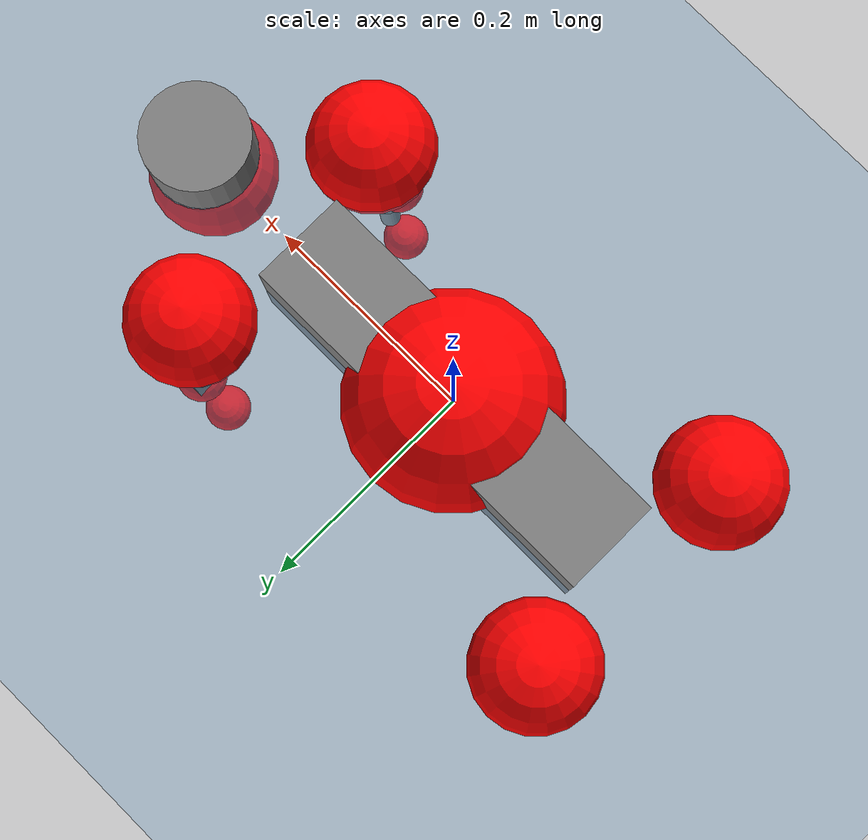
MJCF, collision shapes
<mujoco model="go2">
  <compiler angle="radian" assetdir="assets" balanceinertia="true" inertiafromgeom="false"/>

  <option timestep="0.005" density="1.2" viscosity="2e-05"/>

  <size nkey="1"/>

  <visual>
    <quality shadowsize="8192"/>
    <map shadowclip="0.5"/>
  </visual>

  <default>
    <default class="/">
      <geom contype="0" conaffinity="0" group="1" solref="-1000 -80"/>
      <site size="0.01 0.005 0.005" group="5"/>
      <general forcelimited="true" biastype="affine" gainprm="20" biasprm="0 -20 -0.5"/>
      <default class="go2">
        <joint armature="0.01" damping="0.01" frictionloss="0.2"/>
        <geom condim="1" margin="0.001"/>
        <default class="visual">
          <geom type="mesh" group="2"/>
        </default>
        <default class="collision">
          <geom group="3"/>
          <default class="foot">
            <geom size="0.022 0 0" condim="6" priority="1" friction="0.8 0.02 0.01" solimp="0.015 1 0.022"/>
          </default>
        </default>
        <default class="reward_collision_sphere">
          <geom group="5" rgba="1 0 0 1"/>
        </default>
      </default>
    </default>
  </default>

  <asset>
    <texture type="skybox" colorspace="auto" name="//unnamed_texture_0" builtin="gradient" rgb1="0.95 0.95 0.95" rgb2="0.95 0.95 0.95" width="100" height="600"/>
    <texture type="2d" colorspace="auto" name="texplane" builtin="checker" rgb1="0.345 0.575 0.748" rgb2="0.345 0.575 0.748" markrgb="1 1 1" width="512" height="512"/>
    <material name="MatPlane" class="/" texture="texplane" texuniform="true" texrepeat="2 2" specular="0.9"/>
    <material name="metal" class="/" rgba="0.9 0.95 0.95 1"/>
    <material name="black" class="/" rgba="0 0 0 1"/>
    <material name="white" class="/"/>
    <material name="gray" class="/" rgba="0.671705 0.692426 0.77427 1"/>
    <mesh name="base_0" class="/" file="base_0.obj"/>
    <mesh name="base_1" class="/" file="base_1.obj"/>
    <mesh name="base_2" class="/" file="base_2.obj"/>
    <mesh name="base_3" class="/" file="base_3.obj"/>
    <mesh name="base_4" class="/" file="base_4.obj"/>
    <mesh name="hip_0" class="/" file="hip_0.obj"/>
    <mesh name="hip_1" class="/" file="hip_1.obj"/>
    <mesh name="thigh_0" class="/" file="thigh_0.obj"/>
    <mesh name="thigh_1" class="/" file="thigh_1.obj"/>
    <mesh name="thigh_mirror_0" class="/" file="thigh_mirror_0.obj"/>
    <mesh name="thigh_mirror_1" class="/" file="thigh_mirror_1.obj"/>
    <mesh name="calf_0" class="/" file="calf_0.obj"/>
    <mesh name="calf_1" class="/" file="calf_1.obj"/>
    <mesh name="calf_mirror_0" class="/" file="calf_mirror_0.obj"/>
    <mesh name="calf_mirror_1" class="/" file="calf_mirror_1.obj"/>
    <mesh name="foot" class="/" file="foot.obj"/>
  </asset>

  <worldbody>
    <geom name="floor" class="/" size="100 100 0.125" type="plane" group="0" material="MatPlane"/>
    <light name="toplight_shadow" class="/" pos="0 0 5" dir="0.0990148 0.0990148 -0.990148" type="directional" ambient="0.04 0.04 0.04" diffuse="0.55 0.55 0.55" specular="0.12 0.12 0.12"/>
    <light name="toplight_fill" class="/" pos="0 0 5" dir="0.0990148 0.0990148 -0.990148" type="directional" castshadow="false" ambient="0.04 0.04 0.04" diffuse="0.3 0.3 0.3" specular="0.08 0.08 0.08"/>
    <body name="trunk" childclass="go2" pos="0.000535623 -0.00062427 0.000172419" quat="1 -3.43888e-05 0.00011033 9.80216e-05">
      <inertial pos="0.0221077 -0.000132338 -0.00484325" quat="-0.00258556 0.713811 0.00259073 0.700329" mass="5.84341" diaginertia="0.139598 0.0641106 0.0126185"/>
      <joint name="//unnamed_joint_0" type="free" armature="0" damping="0" frictionloss="0"/>
      <geom name="//unnamed_geom_1" class="visual" material="black" mesh="base_0"/>
      <geom name="//unnamed_geom_2" class="visual" material="black" mesh="base_1"/>
      <geom name="//unnamed_geom_3" class="visual" material="black" mesh="base_2"/>
      <geom name="//unnamed_geom_4" class="visual" material="white" mesh="base_3"/>
      <geom name="//unnamed_geom_5" class="visual" material="gray" mesh="base_4"/>
      <geom name="trunk_1" class="collision" size="0.178592 0.0443868 0.0541187" type="box"/>
      <geom name="trunk_2" class="collision" size="0.0474725 0.0427253" pos="0.300127 0 0.00875383" type="cylinder"/>
      <geom name="trunk_3" class="collision" size="0.0446242" pos="0.308552 0 -0.052523"/>
      <geom name="//unnamed_geom_9" class="reward_collision_sphere" size="0.094945"/>
      <geom name="//unnamed_geom_10" class="reward_collision_sphere" size="0.056967" pos="0.294862 0 -0.0393922"/>
      <site name="imu" pos="-0.0264163 -0.00209414 0.0312959" size="0.0094945"/>
      <camera name="track" pos="0 -1.83978 0" quat="0.707107 0.707107 0 0" mode="trackcom"/>
      <camera name="ego_camera" pos="0.32856 0 0.0393922" quat="-0.5 -0.5 0.5 0.5"/>
      <body name="FL_hip" pos="0.20329 0.0437906 0.00126966" quat="1 -3.23134e-05 -9.98615e-05 -8.64426e-05">
        <inertial pos="-0.00634352 0.00258915 -0.000173767" quat="0.496766 0.499167 0.505445 0.498579" mass="0.579262" diaginertia="0.00114241 0.000396527 0.000246635"/>
        <joint name="FL_hip_joint" pos="0 0 0" axis="0.999922 -0.0115413 0.00471141" range="-1.0454 1.04937" armature="0.00895506" damping="0.00727021" frictionloss="0.181116"/>
        <geom name="//unnamed_geom_11" class="visual" material="metal" mesh="hip_0"/>
        <geom name="//unnamed_geom_12" class="visual" material="gray" mesh="hip_1"/>
        <geom name="//unnamed_geom_13" class="collision" size="0.0436747 0.018989" pos="0 0.0735912 0" quat="0.707107 0.707107 0 0" type="cylinder"/>
        <geom name="//unnamed_geom_14" class="reward_collision_sphere" size="0.056967" pos="0 0.0643923 0"/>
        <body name="FL_thigh" pos="0.000223873 0.0883668 0.00128063" quat="1 -0.000400796 -0.000156086 0.00025309">
          <inertial pos="-0.00419221 -0.0204101 -0.0297664" quat="0.831442 0.0814968 -0.0203163 0.549226" mass="0.986371" diaginertia="0.00772149 0.00386759 0.000454763"/>
          <joint name="FL_thigh_joint" pos="0 0 0" axis="0.00329199 0.999995 0.000223748" range="-1.58473 3.49433" armature="0.0095298" damping="0.00971598" frictionloss="0.198732"/>
          <geom name="//unnamed_geom_15" class="visual" material="metal" mesh="thigh_0"/>
          <geom name="//unnamed_geom_16" class="visual" material="gray" mesh="thigh_1"/>
          <geom name="//unnamed_geom_17" class="collision" size="0.101116 0.0116308 0.0161407" pos="0 0 -0.0932283" quat="0.707107 0 0.707107 0" type="box"/>
          <body name="FL_calf" pos="-0.000413794 -0.00171114 -0.186588" quat="1 -0.000254118 -0.00016695 -2.26096e-05">
            <inertial pos="0.00584773 -0.000990888 -0.123084" quat="0.711647 9.85839e-05 -0.000447406 0.702537" mass="0.201991" diaginertia="0.00191601 0.00095389 2.69543e-05"/>
            <joint name="FL_calf_joint" pos="0 0 0" axis="-0.00353193 0.999974 -0.00622295" stiffness="0.00232471" range="-2.72672 -0.846057" armature="0.00958902" damping="0.00653961" frictionloss="0.19071"/>
            <geom name="//unnamed_geom_18" class="visual" material="gray" mesh="calf_0"/>
            <geom name="//unnamed_geom_19" class="visual" material="black" mesh="calf_1"/>
            <geom name="FL_calf0" class="collision" size="0.0113934 0.056967" pos="0.00842462 0 -0.052523" quat="0.994493 0 -0.104807 0" type="cylinder"/>
            <geom name="//unnamed_geom_21" class="collision" size="0.010444 0.0308571" pos="0.0210615 0 -0.129557" quat="0.999688 0 0.0249974 0" type="cylinder"/>
            <geom name="//unnamed_geom_22" class="visual" pos="0 0 -0.186457" quat="1 0 0 0" material="black" mesh="foot"/>
            <geom name="FL_foot" class="foot" size="0.0172165" pos="-0.00210615 0 -0.186457"/>
            <geom name="//unnamed_geom_24" class="reward_collision_sphere" size="0.0237363"/>
            <geom name="//unnamed_geom_25" class="reward_collision_sphere" size="0.0237363" pos="-0.00210615 0 -0.186457"/>
            <site name="FL_foot" class="foot" pos="-0.00210615 0 -0.186457" size="0.0094945"/>
          </body>
        </body>
      </body>
      <body name="FR_hip" pos="0.203253 -0.0407789 -0.000509158" quat="1 2.30648e-05 1.6712e-05 0.000151667">
        <inertial pos="-0.00414005 -0.00168287 -0.00180651" quat="0.500376 0.505505 0.495692 0.498375" mass="0.591199" diaginertia="0.00116389 0.000401435 0.000250012"/>
        <joint name="FR_hip_joint" pos="0 0 0" axis="1 -0.000123001 0.000128" stiffness="0.0068454" range="-1.06694 1.05138" armature="0.009519" damping="0.0135059" frictionloss="0.18881"/>
        <geom name="//unnamed_geom_26" class="visual" pos="0 3.87731e-10 1.66306e-08" quat="4.63268e-05 1 0 0" material="metal" mesh="hip_0"/>
        <geom name="//unnamed_geom_27" class="visual" pos="0 6.28558e-10 -4.11338e-08" quat="4.63268e-05 1 0 0" material="gray" mesh="hip_1"/>
        <geom name="//unnamed_geom_28" class="collision" size="0.0436747 0.018989" pos="0 -0.0735912 0" quat="0.707107 0.707107 0 0" type="cylinder"/>
        <geom name="//unnamed_geom_29" class="reward_collision_sphere" size="0.056967" pos="0 -0.0643923 0"/>
        <body name="FR_thigh" pos="4.59822e-05 -0.0878197 -0.000372852" quat="1 3.47772e-05 -1.54112e-06 1.59212e-05">
          <inertial pos="-0.00277999 0.0222893 -0.0285276" quat="0.551592 -0.0200512 0.0847609 0.829554" mass="0.981831" diaginertia="0.00764827 0.0038582 0.00044978"/>
          <joint name="FR_thigh_joint" pos="0 0 0" axis="-0.00367725 -0.999987 -0.00366516" range="-3.4985 1.55084" armature="0.00946397" damping="0.0129414" frictionloss="0.194783"/>
          <geom name="//unnamed_geom_30" class="visual" material="metal" mesh="thigh_mirror_0"/>
          <geom name="//unnamed_geom_31" class="visual" material="gray" mesh="thigh_mirror_1"/>
          <geom name="//unnamed_geom_32" class="collision" size="0.101116 0.0116308 0.0161407" pos="0 0 -0.0932283" quat="0.707107 0 0.707107 0" type="box"/>
          <body name="FR_calf" pos="-0.000387589 -0.000776653 -0.186105" quat="1 -0.000398352 0.000488342 9.06493e-05">
            <inertial pos="0.00833635 0.00147288 -0.12405" quat="0.702455 -0.00267088 0.00265647 0.711718" mass="0.204935" diaginertia="0.00189523 0.000961613 2.75887e-05"/>
            <joint name="FR_calf_joint" pos="0 0 0" axis="-0.00013346 -1 -0.000253626" range="0.814595 2.72639" armature="0.00970045" damping="0.0124576" frictionloss="0.193993"/>
            <geom name="//unnamed_geom_33" class="visual" material="gray" mesh="calf_mirror_0"/>
            <geom name="//unnamed_geom_34" class="visual" material="black" mesh="calf_mirror_1"/>
            <geom name="FR_calf0" class="collision" size="0.0123429 0.056967" pos="0.0105308 0 -0.052523" quat="0.995004 0 -0.0998334 0" type="cylinder"/>
            <geom name="//unnamed_geom_36" class="collision" size="0.010444 0.0308571" pos="0.0210615 0 -0.129557" quat="0.999688 0 0.0249974 0" type="cylinder"/>
            <geom name="//unnamed_geom_37" class="visual" pos="0 0 -0.186457" quat="1 0 0 0" material="black" mesh="foot"/>
            <geom name="FR_foot" class="foot" size="0.021968" pos="-0.00210615 0 -0.186457"/>
            <geom name="//unnamed_geom_39" class="reward_collision_sphere" size="0.0237363"/>
            <geom name="//unnamed_geom_40" class="reward_collision_sphere" size="0.0237363" pos="-0.00210615 0 -0.186457"/>
            <site name="FR_foot" class="foot" pos="-0.00210615 0 -0.186457" size="0.0094945"/>
          </body>
        </body>
      </body>
      <body name="RL_hip" pos="-0.202073 0.0429505 0.000586523" quat="1 -0.000242546 0.000127187 -8.38671e-05">
        <inertial pos="0.0066254 0.000677067 0.000175783" quat="0.506004 0.498132 0.497965 0.49785" mass="0.586483" diaginertia="0.00114174 0.000392222 0.000245699"/>
        <joint name="RL_hip_joint" pos="0 0 0" axis="-0.999767 0.0215927 -0.00053385" range="-1.06052 1.03692" armature="0.00945414" damping="0.0110253" frictionloss="0.19341"/>
        <geom name="//unnamed_geom_41" class="visual" pos="-1.548e-09 0 -3.03444e-07" quat="4.63268e-05 0 1 0" material="metal" mesh="hip_0"/>
        <geom name="//unnamed_geom_42" class="visual" pos="-2.5095e-09 0 -2.69112e-07" quat="4.63268e-05 0 1 0" material="gray" mesh="hip_1"/>
        <geom name="//unnamed_geom_43" class="collision" size="0.0436747 0.018989" pos="0 0.0735912 0" quat="0.707107 0.707107 0 0" type="cylinder"/>
        <geom name="//unnamed_geom_44" class="reward_collision_sphere" size="0.056967" pos="0 0.0643923 0"/>
        <body name="RL_thigh" pos="-0.00105039 0.0864905 0.00102177" quat="1 0.00011659 0.000230171 0.000107857">
          <inertial pos="-0.00339979 -0.0191334 -0.0290106" quat="0.829446 0.0860093 -0.0200496 0.551561" mass="0.985186" diaginertia="0.00772248 0.00381071 0.000440655"/>
          <joint name="RL_thigh_joint" pos="0 0 0" axis="-0.000737974 0.999995 -0.00298517" range="-0.536258 4.51922" armature="0.00988683" damping="0.00740918" frictionloss="0.19168"/>
          <geom name="//unnamed_geom_45" class="visual" material="metal" mesh="thigh_0"/>
          <geom name="//unnamed_geom_46" class="visual" material="gray" mesh="thigh_1"/>
          <geom name="//unnamed_geom_47" class="collision" size="0.101116 0.0116308 0.0161407" pos="0 0 -0.0932283" quat="0.707107 0 0.707107 0" type="box"/>
          <body name="RL_calf" pos="0.000768363 -0.000556989 -0.187746" quat="1 -0.000117998 0.000601759 -0.000170716">
            <inertial pos="0.00663749 -0.000582426 -0.121981" quat="0.71233 0.00407859 -0.00780588 0.701789" mass="0.205186" diaginertia="0.00193783 0.00097657 2.7317e-05"/>
            <joint name="RL_calf_joint" pos="0 0 0" axis="0.000858387 0.999999 0.00130708" stiffness="0.00462332" range="-2.71303 -0.822302" armature="0.00968878" damping="0" frictionloss="0.191974"/>
            <geom name="//unnamed_geom_48" class="visual" material="gray" mesh="calf_0"/>
            <geom name="//unnamed_geom_49" class="visual" material="black" mesh="calf_1"/>
            <geom name="RL_calf0" class="collision" size="0.0123429 0.056967" pos="0.0105308 0 -0.052523" quat="0.995004 0 -0.0998334 0" type="cylinder"/>
            <geom name="//unnamed_geom_51" class="collision" size="0.010444 0.0308571" pos="0.0210615 0 -0.129557" quat="0.999688 0 0.0249974 0" type="cylinder"/>
            <geom name="//unnamed_geom_52" class="visual" pos="0 0 -0.186457" quat="1 0 0 0" material="black" mesh="foot"/>
            <geom name="RL_foot" class="foot" size="0.0181287" pos="-0.00210615 0 -0.186457"/>
            <geom name="//unnamed_geom_54" class="reward_collision_sphere" size="0.0237363"/>
            <geom name="//unnamed_geom_55" class="reward_collision_sphere" size="0.0237363" pos="-0.00210615 0 -0.186457"/>
            <site name="RL_foot" class="foot" pos="-0.00210615 0 -0.186457" size="0.0094945"/>
          </body>
        </body>
      </body>
      <body name="RR_hip" pos="-0.204962 -0.0435343 -0.00133225" quat="1 1.78787e-05 1.65582e-05 0.000215233">
        <inertial pos="0.00496057 -0.0026514 0.000216763" quat="0.498688 0.494122 0.497173 0.509874" mass="0.575877" diaginertia="0.00112415 0.000386312 0.000242521"/>
        <joint name="RR_hip_joint" pos="0 0 0" axis="-0.999974 0.00465013 0.00553315" stiffness="0.00113131" range="-1.04434 1.04438" armature="0.00960486" damping="0.00159402" frictionloss="0.190083"/>
        <geom name="//unnamed_geom_56" class="visual" pos="1.54339e-09 3.87731e-10 -3.20075e-07" quat="2.14617e-09 4.63268e-05 4.63268e-05 -1" material="metal" mesh="hip_0"/>
        <geom name="//unnamed_geom_57" class="visual" pos="2.5209e-09 6.28558e-10 -2.27978e-07" quat="2.14617e-09 4.63268e-05 4.63268e-05 -1" material="gray" mesh="hip_1"/>
        <geom name="//unnamed_geom_58" class="collision" size="0.0436747 0.018989" pos="0 -0.0735912 0" quat="0.707107 0.707107 0 0" type="cylinder"/>
        <geom name="//unnamed_geom_59" class="reward_collision_sphere" size="0.056967" pos="0 -0.0643923 0"/>
        <body name="RR_thigh" pos="0.000190644 -0.0880367 -0.000594657" quat="1 0.000193216 2.78936e-05 4.67984e-05">
          <inertial pos="-0.00338078 0.0207648 -0.0287436" quat="0.551624 -0.0274109 0.083205 0.82948" mass="0.984636" diaginertia="0.00775351 0.00386037 0.000461493"/>
          <joint name="RR_thigh_joint" pos="0 0 0" axis="0.000699453 -0.999999 0.000750378" range="-4.53512 0.515945" armature="0.00955797" damping="0.0144043" frictionloss="0.198821"/>
          <geom name="//unnamed_geom_60" class="visual" material="metal" mesh="thigh_mirror_0"/>
          <geom name="//unnamed_geom_61" class="visual" material="gray" mesh="thigh_mirror_1"/>
          <geom name="//unnamed_geom_62" class="collision" size="0.101116 0.0116308 0.0161407" pos="0 0 -0.0932283" quat="0.707107 0 0.707107 0" type="box"/>
          <body name="RR_calf" pos="0.000918828 -0.00104567 -0.187322" quat="1 -2.27293e-05 8.73837e-05 2.07158e-05">
            <inertial pos="0.00598231 -0.000677012 -0.122953" quat="0.70305 -0.00405442 0.00263058 0.711124" mass="0.206785" diaginertia="0.00194477 0.000966642 2.72346e-05"/>
            <joint name="RR_calf_joint" pos="0 0 0" axis="0.00397298 -0.999991 0.00141902" range="0.845633 2.74626" armature="0.00954954" damping="0.010004" frictionloss="0.199967"/>
            <geom name="//unnamed_geom_63" class="visual" material="gray" mesh="calf_mirror_0"/>
            <geom name="//unnamed_geom_64" class="visual" material="black" mesh="calf_mirror_1"/>
            <geom name="RR_calf0" class="collision" size="0.0123429 0.056967" pos="0.0105308 0 -0.052523" quat="0.995004 0 -0.0998334 0" type="cylinder"/>
            <geom name="//unnamed_geom_66" class="collision" size="0.010444 0.0308571" pos="0.0210615 0 -0.129557" quat="0.999688 0 0.0249974 0" type="cylinder"/>
            <geom name="//unnamed_geom_67" class="visual" pos="0 0 -0.186457" quat="1 0 0 0" material="black" mesh="foot"/>
            <geom name="RR_foot" class="foot" size="0.0221953" pos="-0.00210615 0 -0.186457"/>
            <geom name="//unnamed_geom_69" class="reward_collision_sphere" size="0.0237363"/>
            <geom name="//unnamed_geom_70" class="reward_collision_sphere" size="0.0237363" pos="-0.00210615 0 -0.186457"/>
            <site name="RR_foot" class="foot" pos="-0.00210615 0 -0.186457" size="0.0094945"/>
          </body>
        </body>
      </body>
    </body>
  </worldbody>

  <contact>
    <pair class="/" geom1="floor" geom2="FL_foot" name="//unnamed_contact_0"/>
    <pair class="/" geom1="floor" geom2="FR_foot" name="//unnamed_contact_1"/>
    <pair class="/" geom1="floor" geom2="RL_foot" name="//unnamed_contact_2"/>
    <pair class="/" geom1="floor" geom2="RR_foot" name="//unnamed_contact_3"/>
  </contact>

  <actuator>
    <general name="FL_hip" class="/" joint="FL_hip_joint" forcerange="-22.3913 22.3913" gainprm="19.0045" biasprm="0 -19.0045 -0.476787"/>
    <general name="FL_thigh" class="/" joint="FL_thigh_joint" forcerange="-22.3866 22.3866" gainprm="19.0045" biasprm="0 -19.0045 -0.476787"/>
    <general name="FL_calf" class="/" joint="FL_calf_joint" forcerange="-41.4501 41.4501" gainprm="19.0045" biasprm="0 -19.0045 -0.476787"/>
    <general name="FR_hip" class="/" joint="FR_hip_joint" forcerange="-22.3776 22.3776" gainprm="19.0045" biasprm="0 -19.0045 -0.476787"/>
    <general name="FR_thigh" class="/" joint="FR_thigh_joint" forcerange="-22.6303 22.6303" gainprm="19.0045" biasprm="0 -19.0045 -0.476787"/>
    <general name="FR_calf" class="/" joint="FR_calf_joint" forcerange="-41.9767 41.9767" gainprm="19.0045" biasprm="0 -19.0045 -0.476787"/>
    <general name="RL_hip" class="/" joint="RL_hip_joint" forcerange="-22.4551 22.4551" gainprm="19.0045" biasprm="0 -19.0045 -0.476787"/>
    <general name="RL_thigh" class="/" joint="RL_thigh_joint" forcerange="-21.8847 21.8847" gainprm="19.0045" biasprm="0 -19.0045 -0.476787"/>
    <general name="RL_calf" class="/" joint="RL_calf_joint" forcerange="-44.5588 44.5588" gainprm="19.0045" biasprm="0 -19.0045 -0.476787"/>
    <general name="RR_hip" class="/" joint="RR_hip_joint" forcerange="-22.7602 22.7602" gainprm="19.0045" biasprm="0 -19.0045 -0.476787"/>
    <general name="RR_thigh" class="/" joint="RR_thigh_joint" forcerange="-22.4267 22.4267" gainprm="19.0045" biasprm="0 -19.0045 -0.476787"/>
    <general name="RR_calf" class="/" joint="RR_calf_joint" forcerange="-40.828 40.828" gainprm="19.0045" biasprm="0 -19.0045 -0.476787"/>
  </actuator>

  <sensor>
    <gyro site="imu" name="imu_angular_velocity"/>
    <velocimeter site="imu" name="imu_linear_velocity"/>
    <framelinvel objtype="site" objname="FL_foot" name="FL_foot_global_linear_velocity"/>
    <framelinvel objtype="site" objname="FR_foot" name="FR_foot_global_linear_velocity"/>
    <framelinvel objtype="site" objname="RL_foot" name="RL_foot_global_linear_velocity"/>
    <framelinvel objtype="site" objname="RR_foot" name="RR_foot_global_linear_velocity"/>
  </sensor>

  <keyframe>
    <key name="home" qpos="0 0 0.325 1 0 0 0 0.1 0.8 -1.5 -0.1 -0.8 1.5 -0.1 0.8 -1.5 0.1 -0.8 1.5"/>
  </keyframe>
</mujoco>
